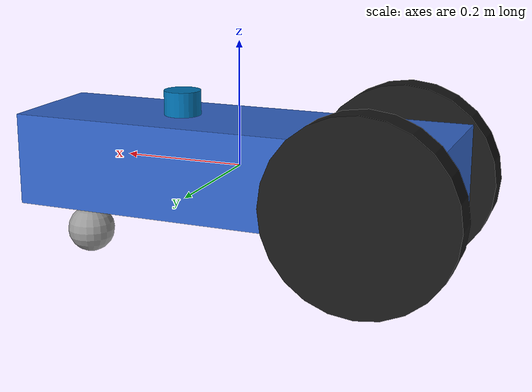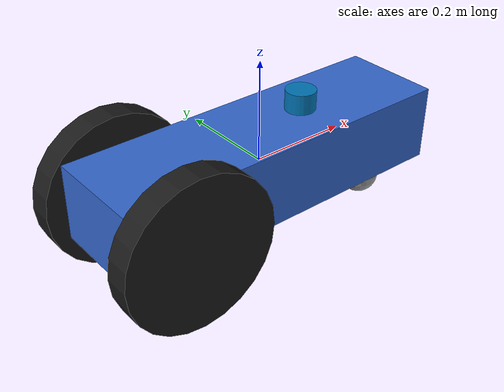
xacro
<?xml version="1.0"?>
<robot name="mi_robot" xmlns:xacro="http://www.ros.org/wiki/xacro">

  <xacro:property name="rueda_radio" value="0.15"/>
  <xacro:property name="rueda_ancho" value="0.05"/>
  <xacro:property name="separacion_ruedas" value="0.25"/>

  <link name="base_link">
    <visual>
      <geometry><box size="0.7 0.2 0.15"/></geometry>
      <material name="azul"><color rgba="0.2 0.4 0.8 1"/></material>
    </visual>
    <collision>
      <geometry><box size="0.7 0.2 0.15"/></geometry>
    </collision>
    <inertial>
      <mass value="6.0"/>
      <inertia ixx="0.03125" ixy="0.0" ixz="0.0" iyy="0.25625" iyz="0.0" izz="0.26500"/>
    </inertial>
  </link>

  <xacro:macro name="rueda" params="prefijo y_signo">
    <link name="rueda_${prefijo}">
      <visual>
        <geometry><cylinder radius="${rueda_radio}" length="${rueda_ancho}"/></geometry>
        <material name="negro"><color rgba="0.1 0.1 0.1 1"/></material>
      </visual>
      <collision>
        <geometry><cylinder radius="${rueda_radio}" length="${rueda_ancho}"/></geometry>
      </collision>
      <inertial>
        <mass value="1.0"/>
        <inertia ixx="0.00583" ixy="0.0" ixz="0.0" iyy="0.0058333" iyz="0.0" izz="0.01125"/>
      </inertial>
    </link>

    <joint name="joint_rueda_${prefijo}" type="continuous">
      <parent link="base_link"/>
      <child link="rueda_${prefijo}"/>
      <origin xyz="-0.24 ${y_signo * separacion_ruedas/2} -0.02" rpy="-1.5708 0 0"/>
      <axis xyz="0 0 1"/>
    </joint>

  </xacro:macro>

  <xacro:rueda prefijo="izq1" y_signo="1"/>
  <xacro:rueda prefijo="der1" y_signo="-1"/>

   <!-- Apoyos (caster) adelante y atrás: sin ellos el robot se inclina y
       arrastra la caja contra el piso, lo que perturba el control. -->
  <xacro:property name="caster_radio" value="0.04"/>
  <xacro:macro name="caster" params="prefijo x">

    <link name="caster_${prefijo}">
      <collision>
        <geometry><sphere radius="${caster_radio}"/></geometry>
      </collision>
      <visual>
        <geometry><sphere radius="${caster_radio}"/></geometry>
        <material name="gris"><color rgba="0.6 0.6 0.6 1"/></material>
      </visual>
      <inertial>
        <mass value="0.01"/>
        <inertia ixx="1e-6" ixy="0.0" ixz="0.0" iyy="1e-6" iyz="0.0" izz="1e-6"/>
      </inertial>
    </link>

    <joint name="joint_caster_${prefijo}" type="fixed">
      <parent link="base_link"/>
      <child link="caster_${prefijo}"/>
      <!-- z: el fondo de la esfera queda a la altura del fondo de las ruedas -->
      <origin xyz="${x} 0 ${-0.03 - rueda_radio + caster_radio}" rpy="0 0 0"/>
    </joint>

    <gazebo reference="caster_${prefijo}">
      <mu1>0.0</mu1>
      <mu2>0.0</mu2>
    </gazebo>

  </xacro:macro>
    <!-- aqui creo un caster -->
  <xacro:caster prefijo="del" x="0.28"/>

    <gazebo>
        <plugin filename="gz-sim-diff-drive-system" name="gz::sim::systems::DiffDrive">
            <left_joint>joint_rueda_izq1</left_joint>
            <right_joint>joint_rueda_der1</right_joint>
            <wheel_separation>${separacion_ruedas}</wheel_separation>
            <wheel_radius>${rueda_radio}</wheel_radius>
            <odom_publish_frequency>30</odom_publish_frequency>
            <topic>/model/mi_robot/cmd_vel</topic>
            <odom_topic>odom</odom_topic>
            <tf_topic>/tf</tf_topic>
            <frame_id>odom</frame_id>
            <child_frame_id>base_link</child_frame_id>
        </plugin>

        <!-- Publica el estado de las ruedas (para que RViz las dibuje girando) -->
        <plugin filename="gz-sim-joint-state-publisher-system" name="gz::sim::systems::JointStatePublisher"/>
    </gazebo>

    <link name="lidar_link">
        <visual><geometry><cylinder radius="0.03" length="0.04"/></geometry></visual>
        <collision><geometry><cylinder radius="0.03" length="0.04"/></geometry></collision>
        <inertial><mass value="0.05"/><inertia ixx="0.0001" ixy="0" ixz="0" iyy="0.0001" iyz="0" izz="0.0001"/></inertial>
    </link>
    <joint name="joint_lidar" type="fixed">
        <parent link="base_link"/>
        <child link="lidar_link"/>
        <origin xyz="0.1 0 0.095" rpy="0 0 0"/>
    </joint>

    <link name="camera_link">
        <visual><geometry><box size="0.02 0.05 0.02"/></geometry></visual>
        <collision><geometry><box size="0.02 0.05 0.02"/></geometry></collision>
        <inertial><mass value="0.02"/><inertia ixx="0.0001" ixy="0" ixz="0" iyy="0.0001" iyz="0" izz="0.0001"/></inertial>
    </link>
    <joint name="joint_camera" type="fixed">
        <parent link="base_link"/>
        <child link="camera_link"/>
        <origin xyz="0.36 0 0.03" rpy="0 0 0"/>
    </joint>

    <gazebo reference="lidar_link">
        <sensor name="lidar" type="gpu_lidar">
            <topic>scan</topic>
            <update_rate>10</update_rate>
            <lidar>
            <scan>
                <horizontal>
                <samples>360</samples>
                <min_angle>-3.14159</min_angle>
                <max_angle>3.14159</max_angle>
                </horizontal>
            </scan>
            <range>
                <min>0.1</min>
                <max>10.0</max>
            </range>
            </lidar>
        </sensor>
    </gazebo>

    <gazebo reference="camera_link">
        <sensor name="camara" type="camera">
            <topic>image_raw</topic>
            <update_rate>30</update_rate>
            <camera>
            <horizontal_fov>1.047</horizontal_fov>
            <image><width>1920</width><height>1080</height></image>
            <clip><near>0.1</near><far>20</far></clip>
            </camera>
        </sensor>
    </gazebo>

</robot>
